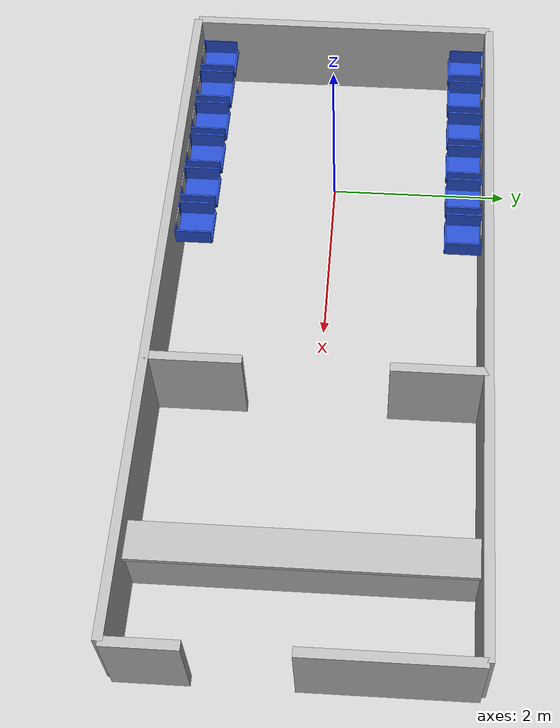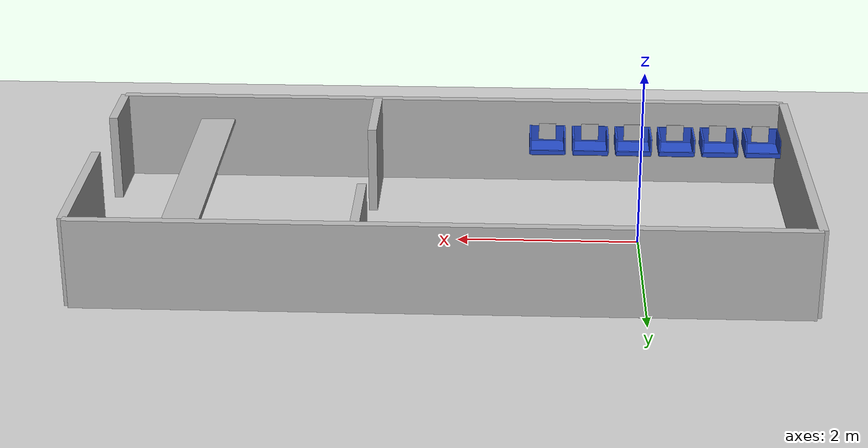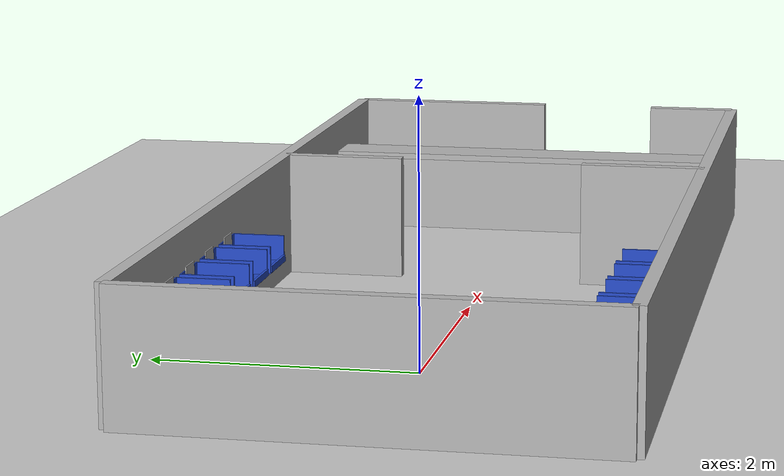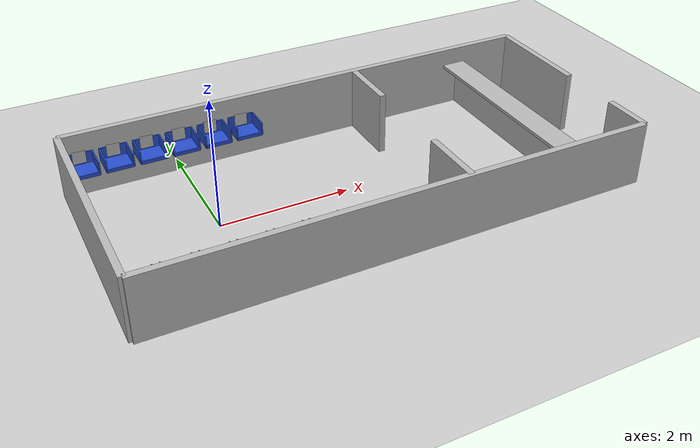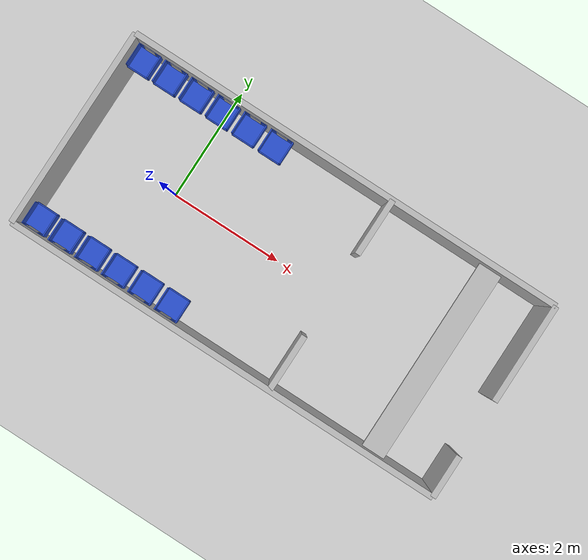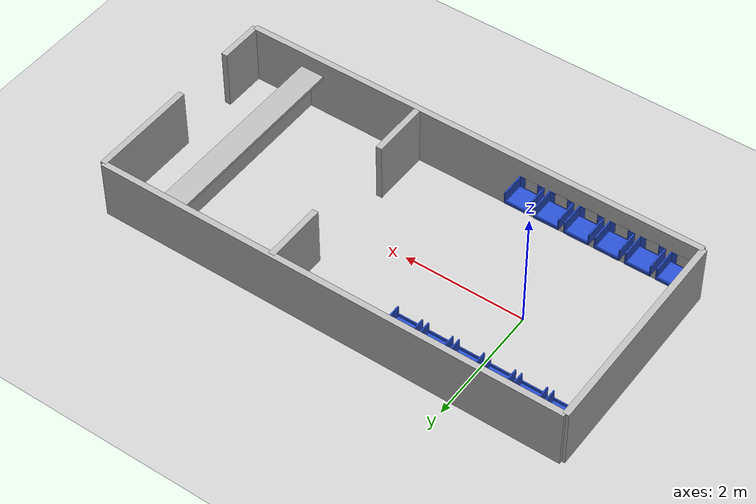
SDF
<?xml version="1.0" ?>
<sdf version="1.4">
    <world name="stockroom">
        <gui>
            <camera name="camera">
                <pose>3 -2 3.5 0.0 0.85 2.4</pose>
                <view_controller>orbit</view_controller>
            </camera>
        </gui>
        <include><uri>model://sun</uri></include>
        <include><uri>model://ground_plane</uri></include>

                <include>
                    <name>bin_0</name>
                    <pose>-1.5 -1.5 0.5 0 0 3.1415</pose>
                    <uri>model://bin</uri>
                </include>
                <model name="bin_0_tag">
                    <static>true</static>
                    <pose>-1.5 -1.6875 0.63 0 0 3.1415</pose>
                    <link name="link">
                        <visual name="visual">
                            <geometry><box><size>0.2 0.01 0.2</size></box></geometry>
                            <material>
                                <script>
                                    <uri>model://bin/tags</uri>
                                    <name>product_0</name>
                                </script>
                            </material>
                        </visual>
                    </link>
                </model>

                <include>
                    <name>bin_1</name>
                    <pose>-1.0 -1.5 0.5 0 0 3.1415</pose>
                    <uri>model://bin</uri>
                </include>
                <model name="bin_1_tag">
                    <static>true</static>
                    <pose>-1.0 -1.6875 0.63 0 0 3.1415</pose>
                    <link name="link">
                        <visual name="visual">
                            <geometry><box><size>0.2 0.01 0.2</size></box></geometry>
                            <material>
                                <script>
                                    <uri>model://bin/tags</uri>
                                    <name>product_1</name>
                                </script>
                            </material>
                        </visual>
                    </link>
                </model>

                <include>
                    <name>bin_2</name>
                    <pose>-0.5 -1.5 0.5 0 0 3.1415</pose>
                    <uri>model://bin</uri>
                </include>
                <model name="bin_2_tag">
                    <static>true</static>
                    <pose>-0.5 -1.6875 0.63 0 0 3.1415</pose>
                    <link name="link">
                        <visual name="visual">
                            <geometry><box><size>0.2 0.01 0.2</size></box></geometry>
                            <material>
                                <script>
                                    <uri>model://bin/tags</uri>
                                    <name>product_2</name>
                                </script>
                            </material>
                        </visual>
                    </link>
                </model>

                <include>
                    <name>bin_3</name>
                    <pose>0.0 -1.5 0.5 0 0 3.1415</pose>
                    <uri>model://bin</uri>
                </include>
                <model name="bin_3_tag">
                    <static>true</static>
                    <pose>0.0 -1.6875 0.63 0 0 3.1415</pose>
                    <link name="link">
                        <visual name="visual">
                            <geometry><box><size>0.2 0.01 0.2</size></box></geometry>
                            <material>
                                <script>
                                    <uri>model://bin/tags</uri>
                                    <name>product_3</name>
                                </script>
                            </material>
                        </visual>
                    </link>
                </model>

                <include>
                    <name>bin_4</name>
                    <pose>0.5 -1.5 0.5 0 0 3.1415</pose>
                    <uri>model://bin</uri>
                </include>
                <model name="bin_4_tag">
                    <static>true</static>
                    <pose>0.5 -1.6875 0.63 0 0 3.1415</pose>
                    <link name="link">
                        <visual name="visual">
                            <geometry><box><size>0.2 0.01 0.2</size></box></geometry>
                            <material>
                                <script>
                                    <uri>model://bin/tags</uri>
                                    <name>product_4</name>
                                </script>
                            </material>
                        </visual>
                    </link>
                </model>

                <include>
                    <name>bin_5</name>
                    <pose>1.0 -1.5 0.5 0 0 3.1415</pose>
                    <uri>model://bin</uri>
                </include>
                <model name="bin_5_tag">
                    <static>true</static>
                    <pose>1.0 -1.6875 0.63 0 0 3.1415</pose>
                    <link name="link">
                        <visual name="visual">
                            <geometry><box><size>0.2 0.01 0.2</size></box></geometry>
                            <material>
                                <script>
                                    <uri>model://bin/tags</uri>
                                    <name>product_5</name>
                                </script>
                            </material>
                        </visual>
                    </link>
                </model>

                <include>
                    <name>bin_6</name>
                    <pose>-1.5 1.5 0.5 0 0 0</pose>
                    <uri>model://bin</uri>
                </include>
                <model name="bin_6_tag">
                    <static>true</static>
                    <pose>-1.5 1.6875 0.63 0 0 0</pose>
                    <link name="link">
                        <visual name="visual">
                            <geometry><box><size>0.2 0.01 0.2</size></box></geometry>
                            <material>
                                <script>
                                    <uri>model://bin/tags</uri>
                                    <name>product_6</name>
                                </script>
                            </material>
                        </visual>
                    </link>
                </model>

                <include>
                    <name>bin_7</name>
                    <pose>-1.0 1.5 0.5 0 0 0</pose>
                    <uri>model://bin</uri>
                </include>
                <model name="bin_7_tag">
                    <static>true</static>
                    <pose>-1.0 1.6875 0.63 0 0 0</pose>
                    <link name="link">
                        <visual name="visual">
                            <geometry><box><size>0.2 0.01 0.2</size></box></geometry>
                            <material>
                                <script>
                                    <uri>model://bin/tags</uri>
                                    <name>product_7</name>
                                </script>
                            </material>
                        </visual>
                    </link>
                </model>

                <include>
                    <name>bin_8</name>
                    <pose>-0.5 1.5 0.5 0 0 0</pose>
                    <uri>model://bin</uri>
                </include>
                <model name="bin_8_tag">
                    <static>true</static>
                    <pose>-0.5 1.6875 0.63 0 0 0</pose>
                    <link name="link">
                        <visual name="visual">
                            <geometry><box><size>0.2 0.01 0.2</size></box></geometry>
                            <material>
                                <script>
                                    <uri>model://bin/tags</uri>
                                    <name>product_8</name>
                                </script>
                            </material>
                        </visual>
                    </link>
                </model>

                <include>
                    <name>bin_9</name>
                    <pose>0.0 1.5 0.5 0 0 0</pose>
                    <uri>model://bin</uri>
                </include>
                <model name="bin_9_tag">
                    <static>true</static>
                    <pose>0.0 1.6875 0.63 0 0 0</pose>
                    <link name="link">
                        <visual name="visual">
                            <geometry><box><size>0.2 0.01 0.2</size></box></geometry>
                            <material>
                                <script>
                                    <uri>model://bin/tags</uri>
                                    <name>product_9</name>
                                </script>
                            </material>
                        </visual>
                    </link>
                </model>

                <include>
                    <name>bin_10</name>
                    <pose>0.5 1.5 0.5 0 0 0</pose>
                    <uri>model://bin</uri>
                </include>
                <model name="bin_10_tag">
                    <static>true</static>
                    <pose>0.5 1.6875 0.63 0 0 0</pose>
                    <link name="link">
                        <visual name="visual">
                            <geometry><box><size>0.2 0.01 0.2</size></box></geometry>
                            <material>
                                <script>
                                    <uri>model://bin/tags</uri>
                                    <name>product_10</name>
                                </script>
                            </material>
                        </visual>
                    </link>
                </model>

                <include>
                    <name>bin_11</name>
                    <pose>1.0 1.5 0.5 0 0 0</pose>
                    <uri>model://bin</uri>
                </include>
                <model name="bin_11_tag">
                    <static>true</static>
                    <pose>1.0 1.6875 0.63 0 0 0</pose>
                    <link name="link">
                        <visual name="visual">
                            <geometry><box><size>0.2 0.01 0.2</size></box></geometry>
                            <material>
                                <script>
                                    <uri>model://bin/tags</uri>
                                    <name>product_11</name>
                                </script>
                            </material>
                        </visual>
                    </link>
                </model>

                <model name="wall_1">
                    <static>true</static>
                    <pose>2.125 -1.75 0.5 0 0 0</pose>
                    <link name="link">
                        <collision name='collision'>
                            <geometry><box><size>7.75 0.1 1</size></box></geometry>
                        </collision>
                        <visual name='visual'>
                            <geometry><box><size>7.75 0.1 1</size></box></geometry>
                        </visual>
                    </link>
                </model>

                <model name="wall_2">
                    <static>true</static>
                    <pose>-1.75 0.0 0.5 0 0 0</pose>
                    <link name="link">
                        <collision name='collision'>
                            <geometry><box><size>0.1 3.5 1</size></box></geometry>
                        </collision>
                        <visual name='visual'>
                            <geometry><box><size>0.1 3.5 1</size></box></geometry>
                        </visual>
                    </link>
                </model>

                <model name="wall_3">
                    <static>true</static>
                    <pose>2.125 1.75 0.5 0 0 0</pose>
                    <link name="link">
                        <collision name='collision'>
                            <geometry><box><size>7.75 0.1 1</size></box></geometry>
                        </collision>
                        <visual name='visual'>
                            <geometry><box><size>7.75 0.1 1</size></box></geometry>
                        </visual>
                    </link>
                </model>

                <model name="wall_4">
                    <static>true</static>
                    <pose>3.0 1.25 0.5 0 0 0</pose>
                    <link name="link">
                        <collision name='collision'>
                            <geometry><box><size>0.1 1.0 1</size></box></geometry>
                        </collision>
                        <visual name='visual'>
                            <geometry><box><size>0.1 1.0 1</size></box></geometry>
                        </visual>
                    </link>
                </model>

                <model name="wall_5">
                    <static>true</static>
                    <pose>3.0 -1.25 0.5 0 0 0</pose>
                    <link name="link">
                        <collision name='collision'>
                            <geometry><box><size>0.1 1.0 1</size></box></geometry>
                        </collision>
                        <visual name='visual'>
                            <geometry><box><size>0.1 1.0 1</size></box></geometry>
                        </visual>
                    </link>
                </model>

                <model name="wall_6">
                    <static>true</static>
                    <pose>6.0 -1.375 0.5 0 0 0</pose>
                    <link name="link">
                        <collision name='collision'>
                            <geometry><box><size>0.1 0.75 1</size></box></geometry>
                        </collision>
                        <visual name='visual'>
                            <geometry><box><size>0.1 0.75 1</size></box></geometry>
                        </visual>
                    </link>
                </model>

                <model name="wall_7">
                    <static>true</static>
                    <pose>6.0 0.875 0.5 0 0 0</pose>
                    <link name="link">
                        <collision name='collision'>
                            <geometry><box><size>0.1 1.75 1</size></box></geometry>
                        </collision>
                        <visual name='visual'>
                            <geometry><box><size>0.1 1.75 1</size></box></geometry>
                        </visual>
                    </link>
                </model>

                <model name="wall_8">
                    <static>true</static>
                    <pose>5.0 0.0 0.35 0 0 0</pose>
                    <link name="link">
                        <collision name='collision'>
                            <geometry><box><size>0.1 3.5 0.7</size></box></geometry>
                        </collision>
                        <visual name='visual'>
                            <geometry><box><size>0.1 3.5 0.7</size></box></geometry>
                        </visual>
                    </link>
                </model>

        <model name="counter_top">
            <static>true</static>
            <pose>4.9 0 0.7 0 0 0</pose>
            <link name="link">
                <collision name="collision" >
                    <geometry><box><size>0.4 3.5 0.05</size></box></geometry>
                </collision>
                <visual name="visual">
                    <geometry><box><size>0.4 3.5 0.05</size></box></geometry>
                </visual>
            </link>
        </model>
    </world>
</sdf>

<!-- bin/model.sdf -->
<sdf version='1.4'>
    <model name='Bin'>
        <static>true</static>
        <link name='bottom'>
            <collision name="collision_bottom">
                <geometry><box><size>0.4 0.4 0.02</size></box></geometry>
            </collision>
            <collision name="collision_left">
                <pose>-0.2 0 0.1 0 0 0</pose>
                <geometry><box><size>0.02 0.4 0.2</size></box></geometry>
            </collision>
            <collision name="collision_right">
                <pose>0.2 0 0.1 0 0 0</pose>
                <geometry><box><size>0.02 0.4 0.2</size></box></geometry>
            </collision>
            <collision name="collision_front">
                <pose> 0 -0.2 0.025 0 0 0</pose>
                <geometry><box><size>0.4 0.02 0.05</size></box></geometry>
            </collision>
            <collision name="collision_back">
                <pose>0 0.2 0.1 0 0 0</pose>
                <geometry><box><size>0.4 0.02 0.2</size></box></geometry>
            </collision>
            <visual name="visual_bottom">
                <geometry><box><size>0.4 0.4 0.02</size></box></geometry>
                <material><script><name>Gazebo/Blue</name></script></material>
            </visual>
            <visual name="visual_left">
                <pose>-0.2 0 0.1 0 0 0</pose>
                <geometry><box><size>0.02 0.4 0.2</size></box></geometry>
                <material><script><name>Gazebo/Blue</name></script></material>
            </visual>
            <visual name="visual_right">
                <pose>0.2 0 0.1 0 0 0</pose>
                <geometry><box><size>0.02 0.4 0.2</size></box></geometry>
                <material><script><name>Gazebo/Blue</name></script></material>
            </visual>
            <visual name="visual_front">
                <pose> 0 -0.2 0.025 0 0 0</pose>
                <geometry><box><size>0.4 0.02 0.05</size></box></geometry>
                <material><script><name>Gazebo/Blue</name></script></material>
            </visual>
            <visual name="visual_back">
                <pose>0 0.2 0.1 0 0 0</pose>
                <geometry><box><size>0.4 0.02 0.2</size></box></geometry>
                <material><script><name>Gazebo/Blue</name></script></material>
            </visual>
        </link>
    </model>
</sdf>
